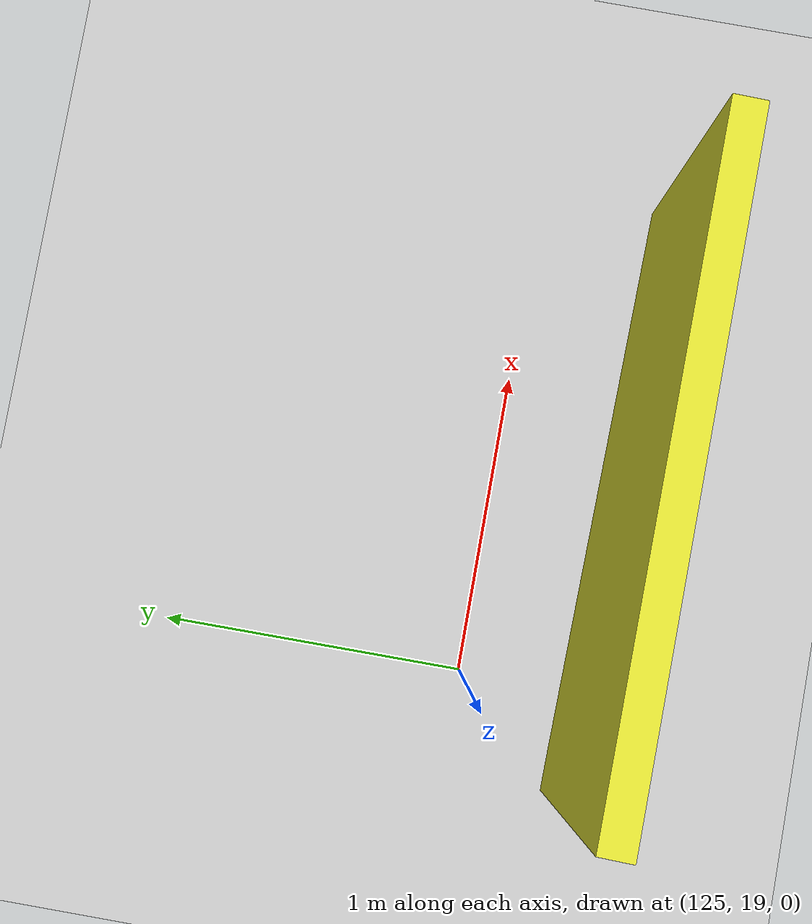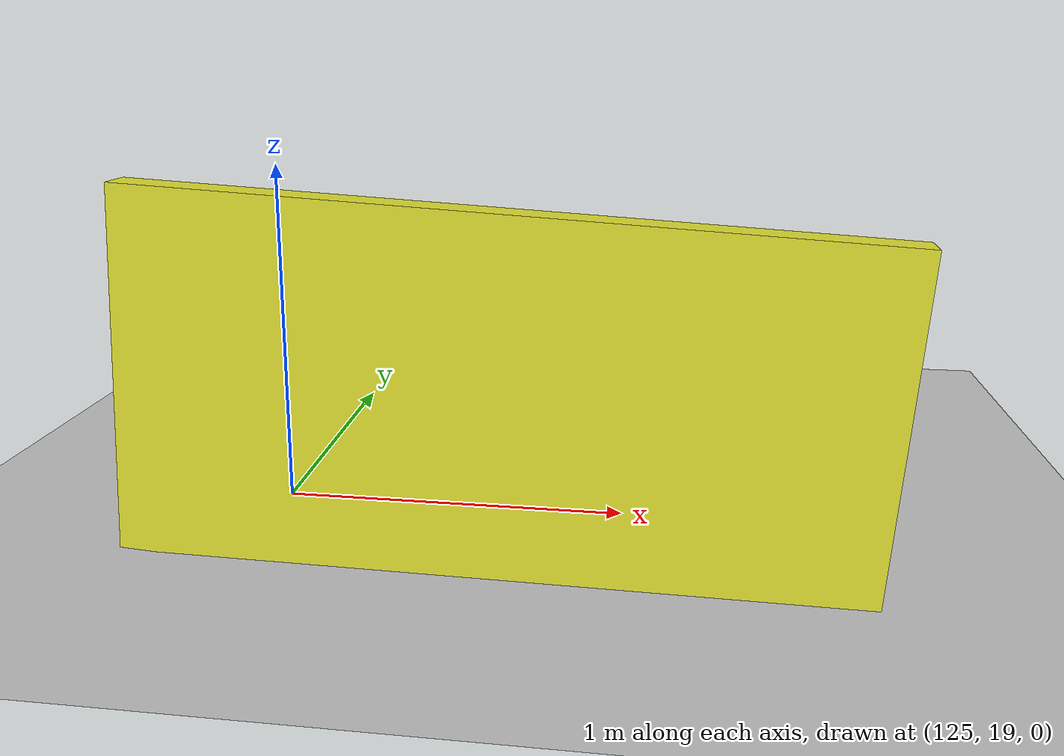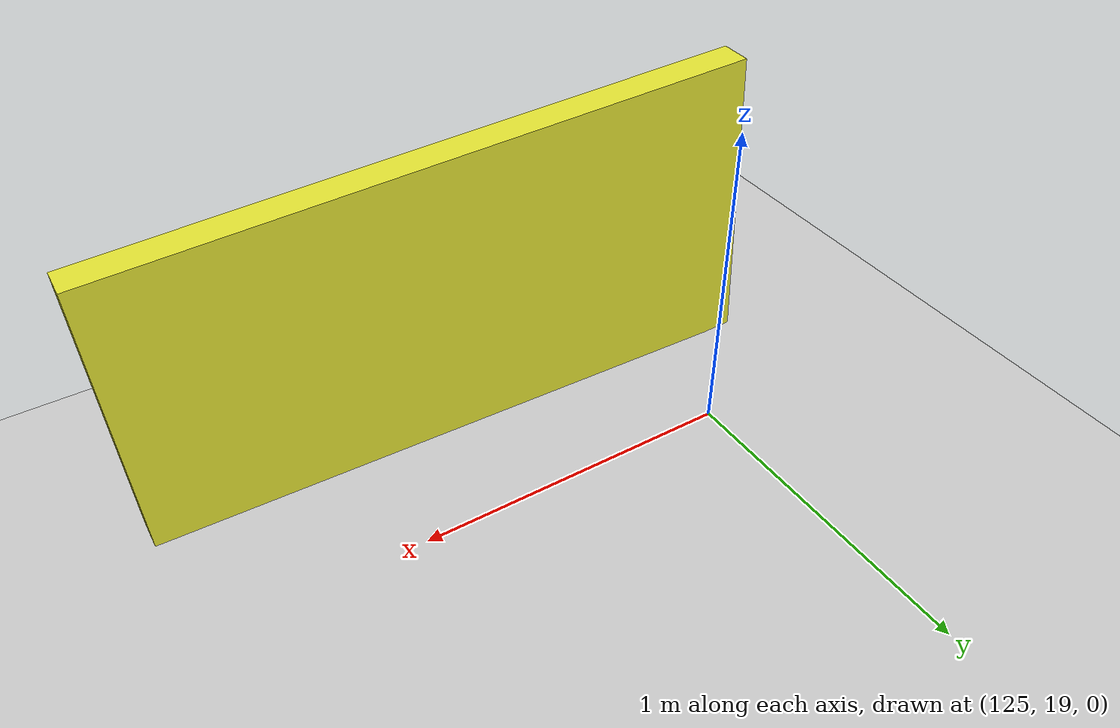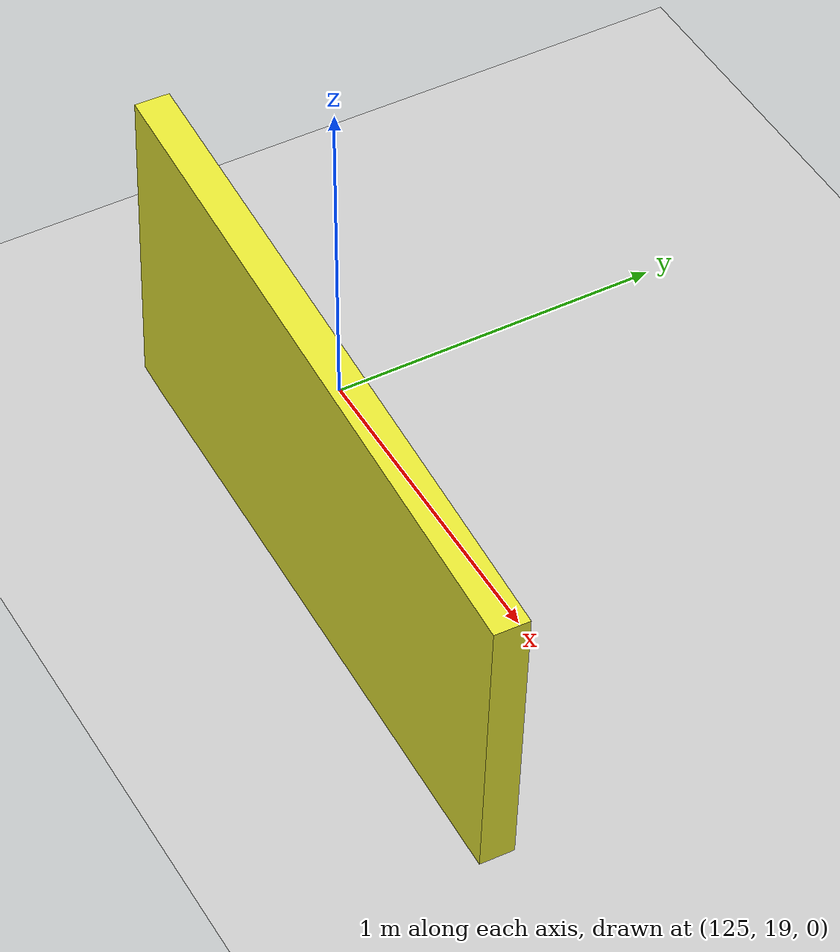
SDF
<sdf version="1.7">
 <world name="default">
  <model name="ground_plane">
   <static>1</static>
   <link name="link">
    <collision name="collision">
     <geometry><plane><normal>0 0 1</normal><size>100 100</size></plane></geometry>
     <surface><friction><ode><mu>100</mu><mu2>50</mu2></ode></friction></surface>
    </collision>
    <visual name="visual">
     <cast_shadows>0</cast_shadows>
     <geometry><plane><normal>0 0 1</normal><size>100 100</size></plane></geometry>
     <material>
      <script><uri>file://media/materials/scripts/gazebo.material</uri><name>Gazebo/Grey</name></script>
     </material>
    </visual>
   </link>
  </model>
  <model name="wooden_wall_2_0">
   <link name="link_1">
    <inertial>
     <mass>1</mass>
     <inertia>
      <ixx>0.166667</ixx>
      <ixy>0</ixy>
      <ixz>0</ixz>
      <iyy>0.166667</iyy>
      <iyz>0</iyz>
      <izz>0.166667</izz>
     </inertia>
    </inertial>
    <visual name="visual">
     <geometry><box><size>2 0.1 1</size></box></geometry>
     <material>
      <lighting>1</lighting>
      <script><uri>file://media/materials/scripts/gazebo.material</uri><name>Gazebo/Grey</name></script>
      <shader type="pixel"><normal_map>__default__</normal_map></shader>
      <ambient>0.9 0.9 0.2 1</ambient>
      <diffuse>0.7 0.7 0.7 1</diffuse>
      <specular>0.01 0.01 0.01 1</specular>
      <emissive>0 0 0 1</emissive>
     </material>
    </visual>
    <collision name="collision">
     <geometry><box><size>2 0.1 1</size></box></geometry>
     <surface>
      <friction>
       <ode><mu>1</mu><mu2>1</mu2><fdir1>0 0 0</fdir1><slip1>0</slip1><slip2>0</slip2></ode>
       <torsional>
        <coefficient>1</coefficient>
        <patch_radius>0</patch_radius>
        <surface_radius>0</surface_radius>
        <use_patch_radius>1</use_patch_radius>
        <ode><slip>0</slip></ode>
       </torsional>
      </friction>
      <bounce><restitution_coefficient>0</restitution_coefficient><threshold>1e+06</threshold></bounce>
      <contact>
       <collide_without_contact>0</collide_without_contact>
       <collide_without_contact_bitmask>1</collide_without_contact_bitmask>
       <collide_bitmask>1</collide_bitmask>
       <ode>
        <soft_cfm>0</soft_cfm>
        <soft_erp>0.2</soft_erp>
        <kp>1e+13</kp>
        <kd>1</kd>
        <max_vel>0.01</max_vel>
        <min_depth>0</min_depth>
       </ode>
       <bullet>
        <split_impulse>1</split_impulse>
        <split_impulse_penetration_threshold>-0.01</split_impulse_penetration_threshold>
        <soft_cfm>0</soft_cfm>
        <soft_erp>0.2</soft_erp>
        <kp>1e+13</kp>
        <kd>1</kd>
       </bullet>
      </contact>
     </surface>
    </collision>
   </link>
   <static>0</static>
   <pose>125.678 18.5874 0.449584 -0.001475 0.052697 -0.026891</pose>
  </model>
 </world>
</sdf>
